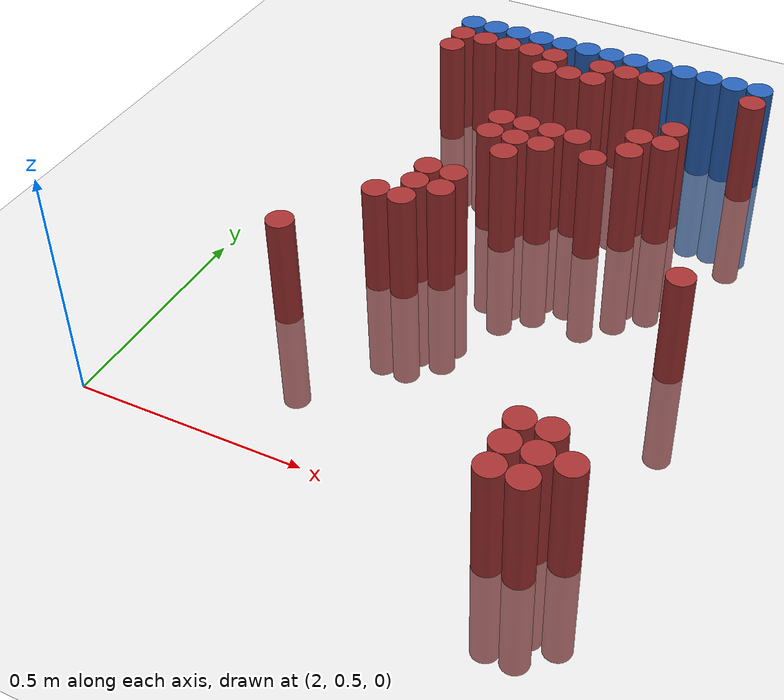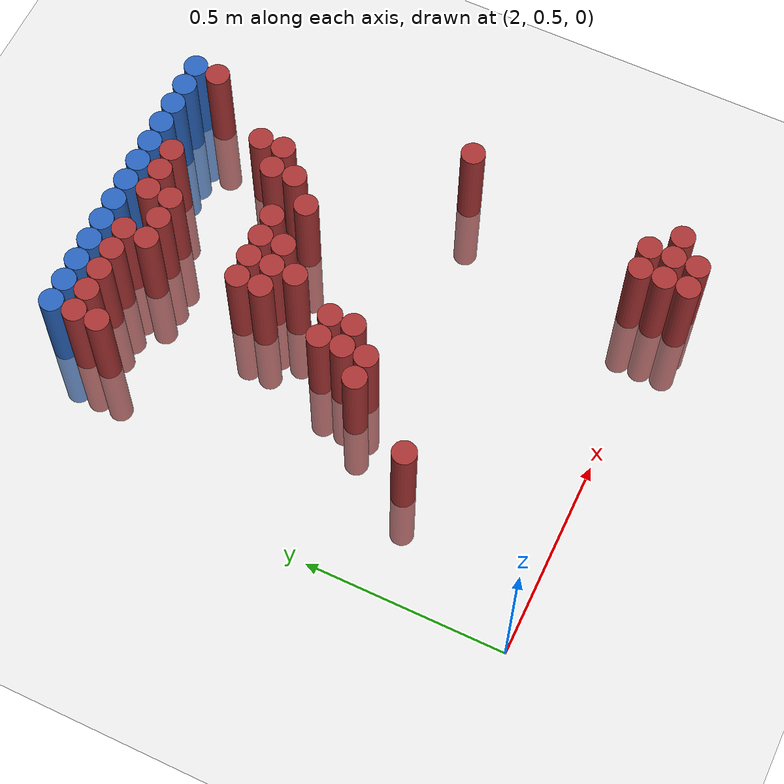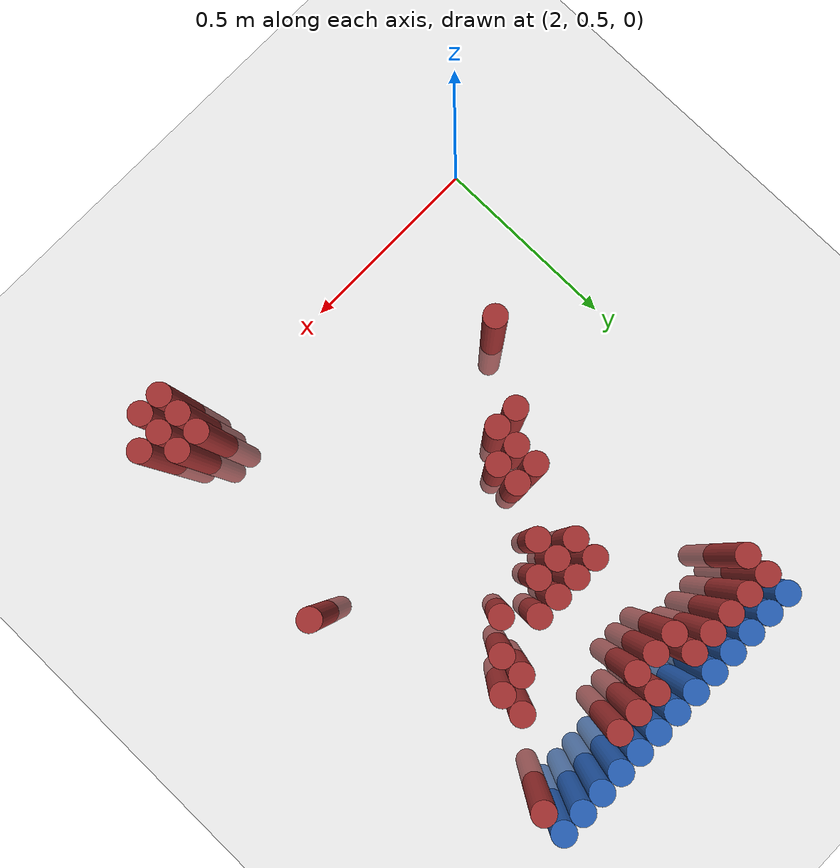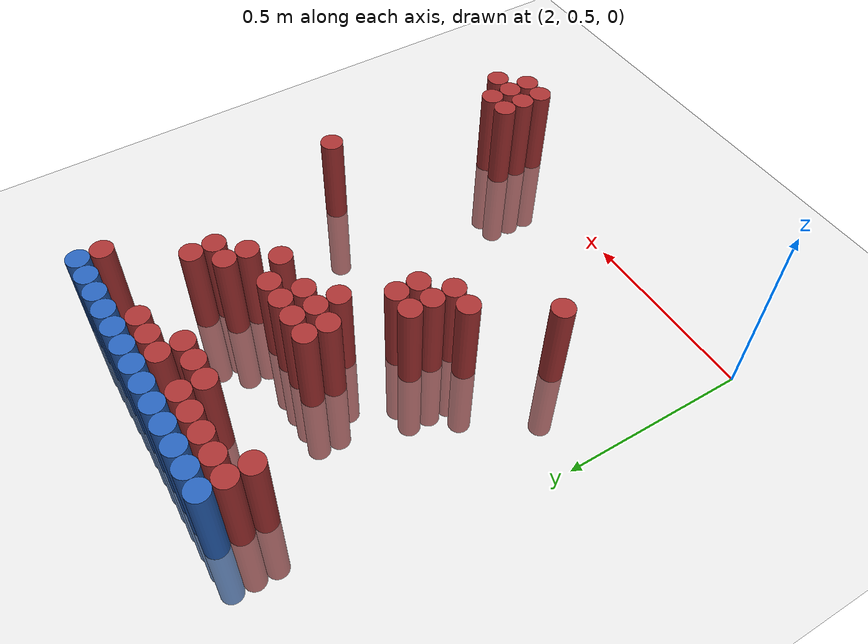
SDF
<sdf version="1.6">
 <world name="default">
  <model name="ground_plane">
   <static>1</static>
   <link name="link">
    <collision name="collision">
     <geometry><plane><normal>0 0 1</normal><size>100 100</size></plane></geometry>
     <surface><friction><ode><mu>100</mu><mu2>50</mu2></ode></friction></surface>
    </collision>
    <visual name="visual">
     <cast_shadows>0</cast_shadows>
     <geometry><plane><normal>0 0 1</normal><size>100 100</size></plane></geometry>
     <material>
      <script><uri>file://media/materials/scripts/gazebo.material</uri><name>Gazebo/Grey</name></script>
     </material>
    </visual>
   </link>
  </model>
  <model name="unit_cylinder_98">
   <static>1</static>
   <pose>2.250000 1.770000 0.000000 0.000000 0.000000 0.000000</pose>
   <link name="link">
    <inertial>
     <mass>1</mass>
     <inertia><ixx>0.145833</ixx><ixy>0</ixy><ixz>0</ixz><iyy>0.145833</iyy><iyz>0</iyz><izz>0.125</izz></inertia>
    </inertial>
    <collision name="collision">
     <geometry><cylinder><radius>0.030000</radius><length>0.5</length></cylinder></geometry>
    </collision>
    <visual name="visual">
     <geometry><cylinder><radius>0.030000</radius><length>0.5</length></cylinder></geometry>
     <material>
      <ambient>0.152000 0.379000 0.720000 1</ambient>
      <diffuse>0.152000 0.379000 0.720000 1</diffuse>
     </material>
     <material>
      <script><name>Gazebo/Grey</name><uri>file://media/materials/scripts/gazebo.material</uri></script>
     </material>
    </visual>
   </link>
  </model>
  <model name="unit_cylinder_99">
   <static>1</static>
   <pose>2.310000 1.770000 0.000000 0.000000 0.000000 0.000000</pose>
   <link name="link">
    <inertial>
     <mass>1</mass>
     <inertia><ixx>0.145833</ixx><ixy>0</ixy><ixz>0</ixz><iyy>0.145833</iyy><iyz>0</iyz><izz>0.125</izz></inertia>
    </inertial>
    <collision name="collision">
     <geometry><cylinder><radius>0.030000</radius><length>0.5</length></cylinder></geometry>
    </collision>
    <visual name="visual">
     <geometry><cylinder><radius>0.030000</radius><length>0.5</length></cylinder></geometry>
     <material>
      <ambient>0.152000 0.379000 0.720000 1</ambient>
      <diffuse>0.152000 0.379000 0.720000 1</diffuse>
     </material>
     <material>
      <script><name>Gazebo/Grey</name><uri>file://media/materials/scripts/gazebo.material</uri></script>
     </material>
    </visual>
   </link>
  </model>
  <model name="unit_cylinder_100">
   <static>1</static>
   <pose>2.370000 1.770000 0.000000 0.000000 0.000000 0.000000</pose>
   <link name="link">
    <inertial>
     <mass>1</mass>
     <inertia><ixx>0.145833</ixx><ixy>0</ixy><ixz>0</ixz><iyy>0.145833</iyy><iyz>0</iyz><izz>0.125</izz></inertia>
    </inertial>
    <collision name="collision">
     <geometry><cylinder><radius>0.030000</radius><length>0.5</length></cylinder></geometry>
    </collision>
    <visual name="visual">
     <geometry><cylinder><radius>0.030000</radius><length>0.5</length></cylinder></geometry>
     <material>
      <ambient>0.152000 0.379000 0.720000 1</ambient>
      <diffuse>0.152000 0.379000 0.720000 1</diffuse>
     </material>
     <material>
      <script><name>Gazebo/Grey</name><uri>file://media/materials/scripts/gazebo.material</uri></script>
     </material>
    </visual>
   </link>
  </model>
  <model name="unit_cylinder_101">
   <static>1</static>
   <pose>2.430000 1.770000 0.000000 0.000000 0.000000 0.000000</pose>
   <link name="link">
    <inertial>
     <mass>1</mass>
     <inertia><ixx>0.145833</ixx><ixy>0</ixy><ixz>0</ixz><iyy>0.145833</iyy><iyz>0</iyz><izz>0.125</izz></inertia>
    </inertial>
    <collision name="collision">
     <geometry><cylinder><radius>0.030000</radius><length>0.5</length></cylinder></geometry>
    </collision>
    <visual name="visual">
     <geometry><cylinder><radius>0.030000</radius><length>0.5</length></cylinder></geometry>
     <material>
      <ambient>0.152000 0.379000 0.720000 1</ambient>
      <diffuse>0.152000 0.379000 0.720000 1</diffuse>
     </material>
     <material>
      <script><name>Gazebo/Grey</name><uri>file://media/materials/scripts/gazebo.material</uri></script>
     </material>
    </visual>
   </link>
  </model>
  <model name="unit_cylinder_102">
   <static>1</static>
   <pose>2.490000 1.770000 0.000000 0.000000 0.000000 0.000000</pose>
   <link name="link">
    <inertial>
     <mass>1</mass>
     <inertia><ixx>0.145833</ixx><ixy>0</ixy><ixz>0</ixz><iyy>0.145833</iyy><iyz>0</iyz><izz>0.125</izz></inertia>
    </inertial>
    <collision name="collision">
     <geometry><cylinder><radius>0.030000</radius><length>0.5</length></cylinder></geometry>
    </collision>
    <visual name="visual">
     <geometry><cylinder><radius>0.030000</radius><length>0.5</length></cylinder></geometry>
     <material>
      <ambient>0.152000 0.379000 0.720000 1</ambient>
      <diffuse>0.152000 0.379000 0.720000 1</diffuse>
     </material>
     <material>
      <script><name>Gazebo/Grey</name><uri>file://media/materials/scripts/gazebo.material</uri></script>
     </material>
    </visual>
   </link>
  </model>
  <model name="unit_cylinder_103">
   <static>1</static>
   <pose>2.550000 1.770000 0.000000 0.000000 0.000000 0.000000</pose>
   <link name="link">
    <inertial>
     <mass>1</mass>
     <inertia><ixx>0.145833</ixx><ixy>0</ixy><ixz>0</ixz><iyy>0.145833</iyy><iyz>0</iyz><izz>0.125</izz></inertia>
    </inertial>
    <collision name="collision">
     <geometry><cylinder><radius>0.030000</radius><length>0.5</length></cylinder></geometry>
    </collision>
    <visual name="visual">
     <geometry><cylinder><radius>0.030000</radius><length>0.5</length></cylinder></geometry>
     <material>
      <ambient>0.152000 0.379000 0.720000 1</ambient>
      <diffuse>0.152000 0.379000 0.720000 1</diffuse>
     </material>
     <material>
      <script><name>Gazebo/Grey</name><uri>file://media/materials/scripts/gazebo.material</uri></script>
     </material>
    </visual>
   </link>
  </model>
  <model name="unit_cylinder_104">
   <static>1</static>
   <pose>2.610000 1.770000 0.000000 0.000000 0.000000 0.000000</pose>
   <link name="link">
    <inertial>
     <mass>1</mass>
     <inertia><ixx>0.145833</ixx><ixy>0</ixy><ixz>0</ixz><iyy>0.145833</iyy><iyz>0</iyz><izz>0.125</izz></inertia>
    </inertial>
    <collision name="collision">
     <geometry><cylinder><radius>0.030000</radius><length>0.5</length></cylinder></geometry>
    </collision>
    <visual name="visual">
     <geometry><cylinder><radius>0.030000</radius><length>0.5</length></cylinder></geometry>
     <material>
      <ambient>0.152000 0.379000 0.720000 1</ambient>
      <diffuse>0.152000 0.379000 0.720000 1</diffuse>
     </material>
     <material>
      <script><name>Gazebo/Grey</name><uri>file://media/materials/scripts/gazebo.material</uri></script>
     </material>
    </visual>
   </link>
  </model>
  <model name="unit_cylinder_105">
   <static>1</static>
   <pose>2.670000 1.770000 0.000000 0.000000 0.000000 0.000000</pose>
   <link name="link">
    <inertial>
     <mass>1</mass>
     <inertia><ixx>0.145833</ixx><ixy>0</ixy><ixz>0</ixz><iyy>0.145833</iyy><iyz>0</iyz><izz>0.125</izz></inertia>
    </inertial>
    <collision name="collision">
     <geometry><cylinder><radius>0.030000</radius><length>0.5</length></cylinder></geometry>
    </collision>
    <visual name="visual">
     <geometry><cylinder><radius>0.030000</radius><length>0.5</length></cylinder></geometry>
     <material>
      <ambient>0.152000 0.379000 0.720000 1</ambient>
      <diffuse>0.152000 0.379000 0.720000 1</diffuse>
     </material>
     <material>
      <script><name>Gazebo/Grey</name><uri>file://media/materials/scripts/gazebo.material</uri></script>
     </material>
    </visual>
   </link>
  </model>
  <model name="unit_cylinder_106">
   <static>1</static>
   <pose>2.730000 1.770000 0.000000 0.000000 0.000000 0.000000</pose>
   <link name="link">
    <inertial>
     <mass>1</mass>
     <inertia><ixx>0.145833</ixx><ixy>0</ixy><ixz>0</ixz><iyy>0.145833</iyy><iyz>0</iyz><izz>0.125</izz></inertia>
    </inertial>
    <collision name="collision">
     <geometry><cylinder><radius>0.030000</radius><length>0.5</length></cylinder></geometry>
    </collision>
    <visual name="visual">
     <geometry><cylinder><radius>0.030000</radius><length>0.5</length></cylinder></geometry>
     <material>
      <ambient>0.152000 0.379000 0.720000 1</ambient>
      <diffuse>0.152000 0.379000 0.720000 1</diffuse>
     </material>
     <material>
      <script><name>Gazebo/Grey</name><uri>file://media/materials/scripts/gazebo.material</uri></script>
     </material>
    </visual>
   </link>
  </model>
  <model name="unit_cylinder_107">
   <static>1</static>
   <pose>2.790000 1.770000 0.000000 0.000000 0.000000 0.000000</pose>
   <link name="link">
    <inertial>
     <mass>1</mass>
     <inertia><ixx>0.145833</ixx><ixy>0</ixy><ixz>0</ixz><iyy>0.145833</iyy><iyz>0</iyz><izz>0.125</izz></inertia>
    </inertial>
    <collision name="collision">
     <geometry><cylinder><radius>0.030000</radius><length>0.5</length></cylinder></geometry>
    </collision>
    <visual name="visual">
     <geometry><cylinder><radius>0.030000</radius><length>0.5</length></cylinder></geometry>
     <material>
      <ambient>0.152000 0.379000 0.720000 1</ambient>
      <diffuse>0.152000 0.379000 0.720000 1</diffuse>
     </material>
     <material>
      <script><name>Gazebo/Grey</name><uri>file://media/materials/scripts/gazebo.material</uri></script>
     </material>
    </visual>
   </link>
  </model>
  <model name="unit_cylinder_108">
   <static>1</static>
   <pose>2.850000 1.770000 0.000000 0.000000 0.000000 0.000000</pose>
   <link name="link">
    <inertial>
     <mass>1</mass>
     <inertia><ixx>0.145833</ixx><ixy>0</ixy><ixz>0</ixz><iyy>0.145833</iyy><iyz>0</iyz><izz>0.125</izz></inertia>
    </inertial>
    <collision name="collision">
     <geometry><cylinder><radius>0.030000</radius><length>0.5</length></cylinder></geometry>
    </collision>
    <visual name="visual">
     <geometry><cylinder><radius>0.030000</radius><length>0.5</length></cylinder></geometry>
     <material>
      <ambient>0.152000 0.379000 0.720000 1</ambient>
      <diffuse>0.152000 0.379000 0.720000 1</diffuse>
     </material>
     <material>
      <script><name>Gazebo/Grey</name><uri>file://media/materials/scripts/gazebo.material</uri></script>
     </material>
    </visual>
   </link>
  </model>
  <model name="unit_cylinder_109">
   <static>1</static>
   <pose>2.910000 1.770000 0.000000 0.000000 0.000000 0.000000</pose>
   <link name="link">
    <inertial>
     <mass>1</mass>
     <inertia><ixx>0.145833</ixx><ixy>0</ixy><ixz>0</ixz><iyy>0.145833</iyy><iyz>0</iyz><izz>0.125</izz></inertia>
    </inertial>
    <collision name="collision">
     <geometry><cylinder><radius>0.030000</radius><length>0.5</length></cylinder></geometry>
    </collision>
    <visual name="visual">
     <geometry><cylinder><radius>0.030000</radius><length>0.5</length></cylinder></geometry>
     <material>
      <ambient>0.152000 0.379000 0.720000 1</ambient>
      <diffuse>0.152000 0.379000 0.720000 1</diffuse>
     </material>
     <material>
      <script><name>Gazebo/Grey</name><uri>file://media/materials/scripts/gazebo.material</uri></script>
     </material>
    </visual>
   </link>
  </model>
  <model name="unit_cylinder_110">
   <static>1</static>
   <pose>2.970000 1.770000 0.000000 0.000000 0.000000 0.000000</pose>
   <link name="link">
    <inertial>
     <mass>1</mass>
     <inertia><ixx>0.145833</ixx><ixy>0</ixy><ixz>0</ixz><iyy>0.145833</iyy><iyz>0</iyz><izz>0.125</izz></inertia>
    </inertial>
    <collision name="collision">
     <geometry><cylinder><radius>0.030000</radius><length>0.5</length></cylinder></geometry>
    </collision>
    <visual name="visual">
     <geometry><cylinder><radius>0.030000</radius><length>0.5</length></cylinder></geometry>
     <material>
      <ambient>0.152000 0.379000 0.720000 1</ambient>
      <diffuse>0.152000 0.379000 0.720000 1</diffuse>
     </material>
     <material>
      <script><name>Gazebo/Grey</name><uri>file://media/materials/scripts/gazebo.material</uri></script>
     </material>
    </visual>
   </link>
  </model>
  <model name="unit_cylinder_126">
   <static>1</static>
   <pose>2.250000 1.710000 0.000000 0.000000 0.000000 0.000000</pose>
   <link name="link">
    <inertial>
     <mass>1</mass>
     <inertia><ixx>0.145833</ixx><ixy>0</ixy><ixz>0</ixz><iyy>0.145833</iyy><iyz>0</iyz><izz>0.125</izz></inertia>
    </inertial>
    <collision name="collision">
     <geometry><cylinder><radius>0.030000</radius><length>0.5</length></cylinder></geometry>
    </collision>
    <visual name="visual">
     <geometry><cylinder><radius>0.030000</radius><length>0.5</length></cylinder></geometry>
     <material>
      <ambient>0.648000 0.192000 0.192000 1</ambient>
      <diffuse>0.648000 0.192000 0.192000 1</diffuse>
     </material>
     <material>
      <script><name>Gazebo/Grey</name><uri>file://media/materials/scripts/gazebo.material</uri></script>
     </material>
    </visual>
   </link>
  </model>
  <model name="unit_cylinder_127">
   <static>1</static>
   <pose>2.310000 1.710000 0.000000 0.000000 0.000000 0.000000</pose>
   <link name="link">
    <inertial>
     <mass>1</mass>
     <inertia><ixx>0.145833</ixx><ixy>0</ixy><ixz>0</ixz><iyy>0.145833</iyy><iyz>0</iyz><izz>0.125</izz></inertia>
    </inertial>
    <collision name="collision">
     <geometry><cylinder><radius>0.030000</radius><length>0.5</length></cylinder></geometry>
    </collision>
    <visual name="visual">
     <geometry><cylinder><radius>0.030000</radius><length>0.5</length></cylinder></geometry>
     <material>
      <ambient>0.648000 0.192000 0.192000 1</ambient>
      <diffuse>0.648000 0.192000 0.192000 1</diffuse>
     </material>
     <material>
      <script><name>Gazebo/Grey</name><uri>file://media/materials/scripts/gazebo.material</uri></script>
     </material>
    </visual>
   </link>
  </model>
  <model name="unit_cylinder_128">
   <static>1</static>
   <pose>2.370000 1.710000 0.000000 0.000000 0.000000 0.000000</pose>
   <link name="link">
    <inertial>
     <mass>1</mass>
     <inertia><ixx>0.145833</ixx><ixy>0</ixy><ixz>0</ixz><iyy>0.145833</iyy><iyz>0</iyz><izz>0.125</izz></inertia>
    </inertial>
    <collision name="collision">
     <geometry><cylinder><radius>0.030000</radius><length>0.5</length></cylinder></geometry>
    </collision>
    <visual name="visual">
     <geometry><cylinder><radius>0.030000</radius><length>0.5</length></cylinder></geometry>
     <material>
      <ambient>0.648000 0.192000 0.192000 1</ambient>
      <diffuse>0.648000 0.192000 0.192000 1</diffuse>
     </material>
     <material>
      <script><name>Gazebo/Grey</name><uri>file://media/materials/scripts/gazebo.material</uri></script>
     </material>
    </visual>
   </link>
  </model>
  <model name="unit_cylinder_129">
   <static>1</static>
   <pose>2.430000 1.710000 0.000000 0.000000 0.000000 0.000000</pose>
   <link name="link">
    <inertial>
     <mass>1</mass>
     <inertia><ixx>0.145833</ixx><ixy>0</ixy><ixz>0</ixz><iyy>0.145833</iyy><iyz>0</iyz><izz>0.125</izz></inertia>
    </inertial>
    <collision name="collision">
     <geometry><cylinder><radius>0.030000</radius><length>0.5</length></cylinder></geometry>
    </collision>
    <visual name="visual">
     <geometry><cylinder><radius>0.030000</radius><length>0.5</length></cylinder></geometry>
     <material>
      <ambient>0.648000 0.192000 0.192000 1</ambient>
      <diffuse>0.648000 0.192000 0.192000 1</diffuse>
     </material>
     <material>
      <script><name>Gazebo/Grey</name><uri>file://media/materials/scripts/gazebo.material</uri></script>
     </material>
    </visual>
   </link>
  </model>
  <model name="unit_cylinder_130">
   <static>1</static>
   <pose>2.490000 1.710000 0.000000 0.000000 0.000000 0.000000</pose>
   <link name="link">
    <inertial>
     <mass>1</mass>
     <inertia><ixx>0.145833</ixx><ixy>0</ixy><ixz>0</ixz><iyy>0.145833</iyy><iyz>0</iyz><izz>0.125</izz></inertia>
    </inertial>
    <collision name="collision">
     <geometry><cylinder><radius>0.030000</radius><length>0.5</length></cylinder></geometry>
    </collision>
    <visual name="visual">
     <geometry><cylinder><radius>0.030000</radius><length>0.5</length></cylinder></geometry>
     <material>
      <ambient>0.648000 0.192000 0.192000 1</ambient>
      <diffuse>0.648000 0.192000 0.192000 1</diffuse>
     </material>
     <material>
      <script><name>Gazebo/Grey</name><uri>file://media/materials/scripts/gazebo.material</uri></script>
     </material>
    </visual>
   </link>
  </model>
  <model name="unit_cylinder_131">
   <static>1</static>
   <pose>2.610000 1.710000 0.000000 0.000000 0.000000 0.000000</pose>
   <link name="link">
    <inertial>
     <mass>1</mass>
     <inertia><ixx>0.145833</ixx><ixy>0</ixy><ixz>0</ixz><iyy>0.145833</iyy><iyz>0</iyz><izz>0.125</izz></inertia>
    </inertial>
    <collision name="collision">
     <geometry><cylinder><radius>0.030000</radius><length>0.5</length></cylinder></geometry>
    </collision>
    <visual name="visual">
     <geometry><cylinder><radius>0.030000</radius><length>0.5</length></cylinder></geometry>
     <material>
      <ambient>0.648000 0.192000 0.192000 1</ambient>
      <diffuse>0.648000 0.192000 0.192000 1</diffuse>
     </material>
     <material>
      <script><name>Gazebo/Grey</name><uri>file://media/materials/scripts/gazebo.material</uri></script>
     </material>
    </visual>
   </link>
  </model>
  <model name="unit_cylinder_132">
   <static>1</static>
   <pose>2.670000 1.710000 0.000000 0.000000 0.000000 0.000000</pose>
   <link name="link">
    <inertial>
     <mass>1</mass>
     <inertia><ixx>0.145833</ixx><ixy>0</ixy><ixz>0</ixz><iyy>0.145833</iyy><iyz>0</iyz><izz>0.125</izz></inertia>
    </inertial>
    <collision name="collision">
     <geometry><cylinder><radius>0.030000</radius><length>0.5</length></cylinder></geometry>
    </collision>
    <visual name="visual">
     <geometry><cylinder><radius>0.030000</radius><length>0.5</length></cylinder></geometry>
     <material>
      <ambient>0.648000 0.192000 0.192000 1</ambient>
      <diffuse>0.648000 0.192000 0.192000 1</diffuse>
     </material>
     <material>
      <script><name>Gazebo/Grey</name><uri>file://media/materials/scripts/gazebo.material</uri></script>
     </material>
    </visual>
   </link>
  </model>
  <model name="unit_cylinder_133">
   <static>1</static>
   <pose>2.730000 1.710000 0.000000 0.000000 0.000000 0.000000</pose>
   <link name="link">
    <inertial>
     <mass>1</mass>
     <inertia><ixx>0.145833</ixx><ixy>0</ixy><ixz>0</ixz><iyy>0.145833</iyy><iyz>0</iyz><izz>0.125</izz></inertia>
    </inertial>
    <collision name="collision">
     <geometry><cylinder><radius>0.030000</radius><length>0.5</length></cylinder></geometry>
    </collision>
    <visual name="visual">
     <geometry><cylinder><radius>0.030000</radius><length>0.5</length></cylinder></geometry>
     <material>
      <ambient>0.648000 0.192000 0.192000 1</ambient>
      <diffuse>0.648000 0.192000 0.192000 1</diffuse>
     </material>
     <material>
      <script><name>Gazebo/Grey</name><uri>file://media/materials/scripts/gazebo.material</uri></script>
     </material>
    </visual>
   </link>
  </model>
  <model name="unit_cylinder_134">
   <static>1</static>
   <pose>2.970000 1.710000 0.000000 0.000000 0.000000 0.000000</pose>
   <link name="link">
    <inertial>
     <mass>1</mass>
     <inertia><ixx>0.145833</ixx><ixy>0</ixy><ixz>0</ixz><iyy>0.145833</iyy><iyz>0</iyz><izz>0.125</izz></inertia>
    </inertial>
    <collision name="collision">
     <geometry><cylinder><radius>0.030000</radius><length>0.5</length></cylinder></geometry>
    </collision>
    <visual name="visual">
     <geometry><cylinder><radius>0.030000</radius><length>0.5</length></cylinder></geometry>
     <material>
      <ambient>0.648000 0.192000 0.192000 1</ambient>
      <diffuse>0.648000 0.192000 0.192000 1</diffuse>
     </material>
     <material>
      <script><name>Gazebo/Grey</name><uri>file://media/materials/scripts/gazebo.material</uri></script>
     </material>
    </visual>
   </link>
  </model>
  <model name="unit_cylinder_145">
   <static>1</static>
   <pose>2.250000 1.650000 0.000000 0.000000 0.000000 0.000000</pose>
   <link name="link">
    <inertial>
     <mass>1</mass>
     <inertia><ixx>0.145833</ixx><ixy>0</ixy><ixz>0</ixz><iyy>0.145833</iyy><iyz>0</iyz><izz>0.125</izz></inertia>
    </inertial>
    <collision name="collision">
     <geometry><cylinder><radius>0.030000</radius><length>0.5</length></cylinder></geometry>
    </collision>
    <visual name="visual">
     <geometry><cylinder><radius>0.030000</radius><length>0.5</length></cylinder></geometry>
     <material>
      <ambient>0.648000 0.192000 0.192000 1</ambient>
      <diffuse>0.648000 0.192000 0.192000 1</diffuse>
     </material>
     <material>
      <script><name>Gazebo/Grey</name><uri>file://media/materials/scripts/gazebo.material</uri></script>
     </material>
    </visual>
   </link>
  </model>
  <model name="unit_cylinder_146">
   <static>1</static>
   <pose>2.490000 1.650000 0.000000 0.000000 0.000000 0.000000</pose>
   <link name="link">
    <inertial>
     <mass>1</mass>
     <inertia><ixx>0.145833</ixx><ixy>0</ixy><ixz>0</ixz><iyy>0.145833</iyy><iyz>0</iyz><izz>0.125</izz></inertia>
    </inertial>
    <collision name="collision">
     <geometry><cylinder><radius>0.030000</radius><length>0.5</length></cylinder></geometry>
    </collision>
    <visual name="visual">
     <geometry><cylinder><radius>0.030000</radius><length>0.5</length></cylinder></geometry>
     <material>
      <ambient>0.648000 0.192000 0.192000 1</ambient>
      <diffuse>0.648000 0.192000 0.192000 1</diffuse>
     </material>
     <material>
      <script><name>Gazebo/Grey</name><uri>file://media/materials/scripts/gazebo.material</uri></script>
     </material>
    </visual>
   </link>
  </model>
  <model name="unit_cylinder_147">
   <static>1</static>
   <pose>2.550000 1.650000 0.000000 0.000000 0.000000 0.000000</pose>
   <link name="link">
    <inertial>
     <mass>1</mass>
     <inertia><ixx>0.145833</ixx><ixy>0</ixy><ixz>0</ixz><iyy>0.145833</iyy><iyz>0</iyz><izz>0.125</izz></inertia>
    </inertial>
    <collision name="collision">
     <geometry><cylinder><radius>0.030000</radius><length>0.5</length></cylinder></geometry>
    </collision>
    <visual name="visual">
     <geometry><cylinder><radius>0.030000</radius><length>0.5</length></cylinder></geometry>
     <material>
      <ambient>0.648000 0.192000 0.192000 1</ambient>
      <diffuse>0.648000 0.192000 0.192000 1</diffuse>
     </material>
     <material>
      <script><name>Gazebo/Grey</name><uri>file://media/materials/scripts/gazebo.material</uri></script>
     </material>
    </visual>
   </link>
  </model>
  <model name="unit_cylinder_148">
   <static>1</static>
   <pose>2.610000 1.650000 0.000000 0.000000 0.000000 0.000000</pose>
   <link name="link">
    <inertial>
     <mass>1</mass>
     <inertia><ixx>0.145833</ixx><ixy>0</ixy><ixz>0</ixz><iyy>0.145833</iyy><iyz>0</iyz><izz>0.125</izz></inertia>
    </inertial>
    <collision name="collision">
     <geometry><cylinder><radius>0.030000</radius><length>0.5</length></cylinder></geometry>
    </collision>
    <visual name="visual">
     <geometry><cylinder><radius>0.030000</radius><length>0.5</length></cylinder></geometry>
     <material>
      <ambient>0.648000 0.192000 0.192000 1</ambient>
      <diffuse>0.648000 0.192000 0.192000 1</diffuse>
     </material>
     <material>
      <script><name>Gazebo/Grey</name><uri>file://media/materials/scripts/gazebo.material</uri></script>
     </material>
    </visual>
   </link>
  </model>
  <model name="unit_cylinder_152">
   <static>1</static>
   <pose>2.850000 1.530000 0.000000 0.000000 0.000000 0.000000</pose>
   <link name="link">
    <inertial>
     <mass>1</mass>
     <inertia><ixx>0.145833</ixx><ixy>0</ixy><ixz>0</ixz><iyy>0.145833</iyy><iyz>0</iyz><izz>0.125</izz></inertia>
    </inertial>
    <collision name="collision">
     <geometry><cylinder><radius>0.030000</radius><length>0.5</length></cylinder></geometry>
    </collision>
    <visual name="visual">
     <geometry><cylinder><radius>0.030000</radius><length>0.5</length></cylinder></geometry>
     <material>
      <ambient>0.648000 0.192000 0.192000 1</ambient>
      <diffuse>0.648000 0.192000 0.192000 1</diffuse>
     </material>
     <material>
      <script><name>Gazebo/Grey</name><uri>file://media/materials/scripts/gazebo.material</uri></script>
     </material>
    </visual>
   </link>
  </model>
  <model name="unit_cylinder_155">
   <static>1</static>
   <pose>2.790000 1.470000 0.000000 0.000000 0.000000 0.000000</pose>
   <link name="link">
    <inertial>
     <mass>1</mass>
     <inertia><ixx>0.145833</ixx><ixy>0</ixy><ixz>0</ixz><iyy>0.145833</iyy><iyz>0</iyz><izz>0.125</izz></inertia>
    </inertial>
    <collision name="collision">
     <geometry><cylinder><radius>0.030000</radius><length>0.5</length></cylinder></geometry>
    </collision>
    <visual name="visual">
     <geometry><cylinder><radius>0.030000</radius><length>0.5</length></cylinder></geometry>
     <material>
      <ambient>0.648000 0.192000 0.192000 1</ambient>
      <diffuse>0.648000 0.192000 0.192000 1</diffuse>
     </material>
     <material>
      <script><name>Gazebo/Grey</name><uri>file://media/materials/scripts/gazebo.material</uri></script>
     </material>
    </visual>
   </link>
  </model>
  <model name="unit_cylinder_156">
   <static>1</static>
   <pose>2.850000 1.470000 0.000000 0.000000 0.000000 0.000000</pose>
   <link name="link">
    <inertial>
     <mass>1</mass>
     <inertia><ixx>0.145833</ixx><ixy>0</ixy><ixz>0</ixz><iyy>0.145833</iyy><iyz>0</iyz><izz>0.125</izz></inertia>
    </inertial>
    <collision name="collision">
     <geometry><cylinder><radius>0.030000</radius><length>0.5</length></cylinder></geometry>
    </collision>
    <visual name="visual">
     <geometry><cylinder><radius>0.030000</radius><length>0.5</length></cylinder></geometry>
     <material>
      <ambient>0.648000 0.192000 0.192000 1</ambient>
      <diffuse>0.648000 0.192000 0.192000 1</diffuse>
     </material>
     <material>
      <script><name>Gazebo/Grey</name><uri>file://media/materials/scripts/gazebo.material</uri></script>
     </material>
    </visual>
   </link>
  </model>
  <model name="unit_cylinder_157">
   <static>1</static>
   <pose>2.490000 1.410000 0.000000 0.000000 0.000000 0.000000</pose>
   <link name="link">
    <inertial>
     <mass>1</mass>
     <inertia><ixx>0.145833</ixx><ixy>0</ixy><ixz>0</ixz><iyy>0.145833</iyy><iyz>0</iyz><izz>0.125</izz></inertia>
    </inertial>
    <collision name="collision">
     <geometry><cylinder><radius>0.030000</radius><length>0.5</length></cylinder></geometry>
    </collision>
    <visual name="visual">
     <geometry><cylinder><radius>0.030000</radius><length>0.5</length></cylinder></geometry>
     <material>
      <ambient>0.648000 0.192000 0.192000 1</ambient>
      <diffuse>0.648000 0.192000 0.192000 1</diffuse>
     </material>
     <material>
      <script><name>Gazebo/Grey</name><uri>file://media/materials/scripts/gazebo.material</uri></script>
     </material>
    </visual>
   </link>
  </model>
  <model name="unit_cylinder_158">
   <static>1</static>
   <pose>2.550000 1.410000 0.000000 0.000000 0.000000 0.000000</pose>
   <link name="link">
    <inertial>
     <mass>1</mass>
     <inertia><ixx>0.145833</ixx><ixy>0</ixy><ixz>0</ixz><iyy>0.145833</iyy><iyz>0</iyz><izz>0.125</izz></inertia>
    </inertial>
    <collision name="collision">
     <geometry><cylinder><radius>0.030000</radius><length>0.5</length></cylinder></geometry>
    </collision>
    <visual name="visual">
     <geometry><cylinder><radius>0.030000</radius><length>0.5</length></cylinder></geometry>
     <material>
      <ambient>0.648000 0.192000 0.192000 1</ambient>
      <diffuse>0.648000 0.192000 0.192000 1</diffuse>
     </material>
     <material>
      <script><name>Gazebo/Grey</name><uri>file://media/materials/scripts/gazebo.material</uri></script>
     </material>
    </visual>
   </link>
  </model>
  <model name="unit_cylinder_159">
   <static>1</static>
   <pose>2.610000 1.410000 0.000000 0.000000 0.000000 0.000000</pose>
   <link name="link">
    <inertial>
     <mass>1</mass>
     <inertia><ixx>0.145833</ixx><ixy>0</ixy><ixz>0</ixz><iyy>0.145833</iyy><iyz>0</iyz><izz>0.125</izz></inertia>
    </inertial>
    <collision name="collision">
     <geometry><cylinder><radius>0.030000</radius><length>0.5</length></cylinder></geometry>
    </collision>
    <visual name="visual">
     <geometry><cylinder><radius>0.030000</radius><length>0.5</length></cylinder></geometry>
     <material>
      <ambient>0.648000 0.192000 0.192000 1</ambient>
      <diffuse>0.648000 0.192000 0.192000 1</diffuse>
     </material>
     <material>
      <script><name>Gazebo/Grey</name><uri>file://media/materials/scripts/gazebo.material</uri></script>
     </material>
    </visual>
   </link>
  </model>
  <model name="unit_cylinder_160">
   <static>1</static>
   <pose>2.670000 1.410000 0.000000 0.000000 0.000000 0.000000</pose>
   <link name="link">
    <inertial>
     <mass>1</mass>
     <inertia><ixx>0.145833</ixx><ixy>0</ixy><ixz>0</ixz><iyy>0.145833</iyy><iyz>0</iyz><izz>0.125</izz></inertia>
    </inertial>
    <collision name="collision">
     <geometry><cylinder><radius>0.030000</radius><length>0.5</length></cylinder></geometry>
    </collision>
    <visual name="visual">
     <geometry><cylinder><radius>0.030000</radius><length>0.5</length></cylinder></geometry>
     <material>
      <ambient>0.648000 0.192000 0.192000 1</ambient>
      <diffuse>0.648000 0.192000 0.192000 1</diffuse>
     </material>
     <material>
      <script><name>Gazebo/Grey</name><uri>file://media/materials/scripts/gazebo.material</uri></script>
     </material>
    </visual>
   </link>
  </model>
  <model name="unit_cylinder_161">
   <static>1</static>
   <pose>2.790000 1.410000 0.000000 0.000000 0.000000 0.000000</pose>
   <link name="link">
    <inertial>
     <mass>1</mass>
     <inertia><ixx>0.145833</ixx><ixy>0</ixy><ixz>0</ixz><iyy>0.145833</iyy><iyz>0</iyz><izz>0.125</izz></inertia>
    </inertial>
    <collision name="collision">
     <geometry><cylinder><radius>0.030000</radius><length>0.5</length></cylinder></geometry>
    </collision>
    <visual name="visual">
     <geometry><cylinder><radius>0.030000</radius><length>0.5</length></cylinder></geometry>
     <material>
      <ambient>0.648000 0.192000 0.192000 1</ambient>
      <diffuse>0.648000 0.192000 0.192000 1</diffuse>
     </material>
     <material>
      <script><name>Gazebo/Grey</name><uri>file://media/materials/scripts/gazebo.material</uri></script>
     </material>
    </visual>
   </link>
  </model>
  <model name="unit_cylinder_162">
   <static>1</static>
   <pose>2.490000 1.350000 0.000000 0.000000 0.000000 0.000000</pose>
   <link name="link">
    <inertial>
     <mass>1</mass>
     <inertia><ixx>0.145833</ixx><ixy>0</ixy><ixz>0</ixz><iyy>0.145833</iyy><iyz>0</iyz><izz>0.125</izz></inertia>
    </inertial>
    <collision name="collision">
     <geometry><cylinder><radius>0.030000</radius><length>0.5</length></cylinder></geometry>
    </collision>
    <visual name="visual">
     <geometry><cylinder><radius>0.030000</radius><length>0.5</length></cylinder></geometry>
     <material>
      <ambient>0.648000 0.192000 0.192000 1</ambient>
      <diffuse>0.648000 0.192000 0.192000 1</diffuse>
     </material>
     <material>
      <script><name>Gazebo/Grey</name><uri>file://media/materials/scripts/gazebo.material</uri></script>
     </material>
    </visual>
   </link>
  </model>
  <model name="unit_cylinder_163">
   <static>1</static>
   <pose>2.550000 1.350000 0.000000 0.000000 0.000000 0.000000</pose>
   <link name="link">
    <inertial>
     <mass>1</mass>
     <inertia><ixx>0.145833</ixx><ixy>0</ixy><ixz>0</ixz><iyy>0.145833</iyy><iyz>0</iyz><izz>0.125</izz></inertia>
    </inertial>
    <collision name="collision">
     <geometry><cylinder><radius>0.030000</radius><length>0.5</length></cylinder></geometry>
    </collision>
    <visual name="visual">
     <geometry><cylinder><radius>0.030000</radius><length>0.5</length></cylinder></geometry>
     <material>
      <ambient>0.648000 0.192000 0.192000 1</ambient>
      <diffuse>0.648000 0.192000 0.192000 1</diffuse>
     </material>
     <material>
      <script><name>Gazebo/Grey</name><uri>file://media/materials/scripts/gazebo.material</uri></script>
     </material>
    </visual>
   </link>
  </model>
  <model name="unit_cylinder_164">
   <static>1</static>
   <pose>2.610000 1.350000 0.000000 0.000000 0.000000 0.000000</pose>
   <link name="link">
    <inertial>
     <mass>1</mass>
     <inertia><ixx>0.145833</ixx><ixy>0</ixy><ixz>0</ixz><iyy>0.145833</iyy><iyz>0</iyz><izz>0.125</izz></inertia>
    </inertial>
    <collision name="collision">
     <geometry><cylinder><radius>0.030000</radius><length>0.5</length></cylinder></geometry>
    </collision>
    <visual name="visual">
     <geometry><cylinder><radius>0.030000</radius><length>0.5</length></cylinder></geometry>
     <material>
      <ambient>0.648000 0.192000 0.192000 1</ambient>
      <diffuse>0.648000 0.192000 0.192000 1</diffuse>
     </material>
     <material>
      <script><name>Gazebo/Grey</name><uri>file://media/materials/scripts/gazebo.material</uri></script>
     </material>
    </visual>
   </link>
  </model>
  <model name="unit_cylinder_165">
   <static>1</static>
   <pose>2.730000 1.350000 0.000000 0.000000 0.000000 0.000000</pose>
   <link name="link">
    <inertial>
     <mass>1</mass>
     <inertia><ixx>0.145833</ixx><ixy>0</ixy><ixz>0</ixz><iyy>0.145833</iyy><iyz>0</iyz><izz>0.125</izz></inertia>
    </inertial>
    <collision name="collision">
     <geometry><cylinder><radius>0.030000</radius><length>0.5</length></cylinder></geometry>
    </collision>
    <visual name="visual">
     <geometry><cylinder><radius>0.030000</radius><length>0.5</length></cylinder></geometry>
     <material>
      <ambient>0.648000 0.192000 0.192000 1</ambient>
      <diffuse>0.648000 0.192000 0.192000 1</diffuse>
     </material>
     <material>
      <script><name>Gazebo/Grey</name><uri>file://media/materials/scripts/gazebo.material</uri></script>
     </material>
    </visual>
   </link>
  </model>
  <model name="unit_cylinder_168">
   <static>1</static>
   <pose>2.550000 1.290000 0.000000 0.000000 0.000000 0.000000</pose>
   <link name="link">
    <inertial>
     <mass>1</mass>
     <inertia><ixx>0.145833</ixx><ixy>0</ixy><ixz>0</ixz><iyy>0.145833</iyy><iyz>0</iyz><izz>0.125</izz></inertia>
    </inertial>
    <collision name="collision">
     <geometry><cylinder><radius>0.030000</radius><length>0.5</length></cylinder></geometry>
    </collision>
    <visual name="visual">
     <geometry><cylinder><radius>0.030000</radius><length>0.5</length></cylinder></geometry>
     <material>
      <ambient>0.648000 0.192000 0.192000 1</ambient>
      <diffuse>0.648000 0.192000 0.192000 1</diffuse>
     </material>
     <material>
      <script><name>Gazebo/Grey</name><uri>file://media/materials/scripts/gazebo.material</uri></script>
     </material>
    </visual>
   </link>
  </model>
  <model name="unit_cylinder_177">
   <static>1</static>
   <pose>2.430000 1.170000 0.000000 0.000000 0.000000 0.000000</pose>
   <link name="link">
    <inertial>
     <mass>1</mass>
     <inertia><ixx>0.145833</ixx><ixy>0</ixy><ixz>0</ixz><iyy>0.145833</iyy><iyz>0</iyz><izz>0.125</izz></inertia>
    </inertial>
    <collision name="collision">
     <geometry><cylinder><radius>0.030000</radius><length>0.5</length></cylinder></geometry>
    </collision>
    <visual name="visual">
     <geometry><cylinder><radius>0.030000</radius><length>0.5</length></cylinder></geometry>
     <material>
      <ambient>0.648000 0.192000 0.192000 1</ambient>
      <diffuse>0.648000 0.192000 0.192000 1</diffuse>
     </material>
     <material>
      <script><name>Gazebo/Grey</name><uri>file://media/materials/scripts/gazebo.material</uri></script>
     </material>
    </visual>
   </link>
  </model>
  <model name="unit_cylinder_178">
   <static>1</static>
   <pose>2.490000 1.170000 0.000000 0.000000 0.000000 0.000000</pose>
   <link name="link">
    <inertial>
     <mass>1</mass>
     <inertia><ixx>0.145833</ixx><ixy>0</ixy><ixz>0</ixz><iyy>0.145833</iyy><iyz>0</iyz><izz>0.125</izz></inertia>
    </inertial>
    <collision name="collision">
     <geometry><cylinder><radius>0.030000</radius><length>0.5</length></cylinder></geometry>
    </collision>
    <visual name="visual">
     <geometry><cylinder><radius>0.030000</radius><length>0.5</length></cylinder></geometry>
     <material>
      <ambient>0.648000 0.192000 0.192000 1</ambient>
      <diffuse>0.648000 0.192000 0.192000 1</diffuse>
     </material>
     <material>
      <script><name>Gazebo/Grey</name><uri>file://media/materials/scripts/gazebo.material</uri></script>
     </material>
    </visual>
   </link>
  </model>
  <model name="unit_cylinder_182">
   <static>1</static>
   <pose>2.430000 1.110000 0.000000 0.000000 0.000000 0.000000</pose>
   <link name="link">
    <inertial>
     <mass>1</mass>
     <inertia><ixx>0.145833</ixx><ixy>0</ixy><ixz>0</ixz><iyy>0.145833</iyy><iyz>0</iyz><izz>0.125</izz></inertia>
    </inertial>
    <collision name="collision">
     <geometry><cylinder><radius>0.030000</radius><length>0.5</length></cylinder></geometry>
    </collision>
    <visual name="visual">
     <geometry><cylinder><radius>0.030000</radius><length>0.5</length></cylinder></geometry>
     <material>
      <ambient>0.648000 0.192000 0.192000 1</ambient>
      <diffuse>0.648000 0.192000 0.192000 1</diffuse>
     </material>
     <material>
      <script><name>Gazebo/Grey</name><uri>file://media/materials/scripts/gazebo.material</uri></script>
     </material>
    </visual>
   </link>
  </model>
  <model name="unit_cylinder_183">
   <static>1</static>
   <pose>2.490000 1.110000 0.000000 0.000000 0.000000 0.000000</pose>
   <link name="link">
    <inertial>
     <mass>1</mass>
     <inertia><ixx>0.145833</ixx><ixy>0</ixy><ixz>0</ixz><iyy>0.145833</iyy><iyz>0</iyz><izz>0.125</izz></inertia>
    </inertial>
    <collision name="collision">
     <geometry><cylinder><radius>0.030000</radius><length>0.5</length></cylinder></geometry>
    </collision>
    <visual name="visual">
     <geometry><cylinder><radius>0.030000</radius><length>0.5</length></cylinder></geometry>
     <material>
      <ambient>0.648000 0.192000 0.192000 1</ambient>
      <diffuse>0.648000 0.192000 0.192000 1</diffuse>
     </material>
     <material>
      <script><name>Gazebo/Grey</name><uri>file://media/materials/scripts/gazebo.material</uri></script>
     </material>
    </visual>
   </link>
  </model>
  <model name="unit_cylinder_190">
   <static>1</static>
   <pose>2.370000 1.050000 0.000000 0.000000 0.000000 0.000000</pose>
   <link name="link">
    <inertial>
     <mass>1</mass>
     <inertia><ixx>0.145833</ixx><ixy>0</ixy><ixz>0</ixz><iyy>0.145833</iyy><iyz>0</iyz><izz>0.125</izz></inertia>
    </inertial>
    <collision name="collision">
     <geometry><cylinder><radius>0.030000</radius><length>0.5</length></cylinder></geometry>
    </collision>
    <visual name="visual">
     <geometry><cylinder><radius>0.030000</radius><length>0.5</length></cylinder></geometry>
     <material>
      <ambient>0.648000 0.192000 0.192000 1</ambient>
      <diffuse>0.648000 0.192000 0.192000 1</diffuse>
     </material>
     <material>
      <script><name>Gazebo/Grey</name><uri>file://media/materials/scripts/gazebo.material</uri></script>
     </material>
    </visual>
   </link>
  </model>
  <model name="unit_cylinder_191">
   <static>1</static>
   <pose>2.430000 1.050000 0.000000 0.000000 0.000000 0.000000</pose>
   <link name="link">
    <inertial>
     <mass>1</mass>
     <inertia><ixx>0.145833</ixx><ixy>0</ixy><ixz>0</ixz><iyy>0.145833</iyy><iyz>0</iyz><izz>0.125</izz></inertia>
    </inertial>
    <collision name="collision">
     <geometry><cylinder><radius>0.030000</radius><length>0.5</length></cylinder></geometry>
    </collision>
    <visual name="visual">
     <geometry><cylinder><radius>0.030000</radius><length>0.5</length></cylinder></geometry>
     <material>
      <ambient>0.648000 0.192000 0.192000 1</ambient>
      <diffuse>0.648000 0.192000 0.192000 1</diffuse>
     </material>
     <material>
      <script><name>Gazebo/Grey</name><uri>file://media/materials/scripts/gazebo.material</uri></script>
     </material>
    </visual>
   </link>
  </model>
  <model name="unit_cylinder_192">
   <static>1</static>
   <pose>3.030000 1.050000 0.000000 0.000000 0.000000 0.000000</pose>
   <link name="link">
    <inertial>
     <mass>1</mass>
     <inertia><ixx>0.145833</ixx><ixy>0</ixy><ixz>0</ixz><iyy>0.145833</iyy><iyz>0</iyz><izz>0.125</izz></inertia>
    </inertial>
    <collision name="collision">
     <geometry><cylinder><radius>0.030000</radius><length>0.5</length></cylinder></geometry>
    </collision>
    <visual name="visual">
     <geometry><cylinder><radius>0.030000</radius><length>0.5</length></cylinder></geometry>
     <material>
      <ambient>0.648000 0.192000 0.192000 1</ambient>
      <diffuse>0.648000 0.192000 0.192000 1</diffuse>
     </material>
     <material>
      <script><name>Gazebo/Grey</name><uri>file://media/materials/scripts/gazebo.material</uri></script>
     </material>
    </visual>
   </link>
  </model>
  <model name="unit_cylinder_203">
   <static>1</static>
   <pose>2.250000 0.870000 0.000000 0.000000 0.000000 0.000000</pose>
   <link name="link">
    <inertial>
     <mass>1</mass>
     <inertia><ixx>0.145833</ixx><ixy>0</ixy><ixz>0</ixz><iyy>0.145833</iyy><iyz>0</iyz><izz>0.125</izz></inertia>
    </inertial>
    <collision name="collision">
     <geometry><cylinder><radius>0.030000</radius><length>0.5</length></cylinder></geometry>
    </collision>
    <visual name="visual">
     <geometry><cylinder><radius>0.030000</radius><length>0.5</length></cylinder></geometry>
     <material>
      <ambient>0.648000 0.192000 0.192000 1</ambient>
      <diffuse>0.648000 0.192000 0.192000 1</diffuse>
     </material>
     <material>
      <script><name>Gazebo/Grey</name><uri>file://media/materials/scripts/gazebo.material</uri></script>
     </material>
    </visual>
   </link>
  </model>
  <model name="unit_cylinder_205">
   <static>1</static>
   <pose>2.910000 0.570000 0.000000 0.000000 0.000000 0.000000</pose>
   <link name="link">
    <inertial>
     <mass>1</mass>
     <inertia><ixx>0.145833</ixx><ixy>0</ixy><ixz>0</ixz><iyy>0.145833</iyy><iyz>0</iyz><izz>0.125</izz></inertia>
    </inertial>
    <collision name="collision">
     <geometry><cylinder><radius>0.030000</radius><length>0.5</length></cylinder></geometry>
    </collision>
    <visual name="visual">
     <geometry><cylinder><radius>0.030000</radius><length>0.5</length></cylinder></geometry>
     <material>
      <ambient>0.648000 0.192000 0.192000 1</ambient>
      <diffuse>0.648000 0.192000 0.192000 1</diffuse>
     </material>
     <material>
      <script><name>Gazebo/Grey</name><uri>file://media/materials/scripts/gazebo.material</uri></script>
     </material>
    </visual>
   </link>
  </model>
  <model name="unit_cylinder_206">
   <static>1</static>
   <pose>2.970000 0.570000 0.000000 0.000000 0.000000 0.000000</pose>
   <link name="link">
    <inertial>
     <mass>1</mass>
     <inertia><ixx>0.145833</ixx><ixy>0</ixy><ixz>0</ixz><iyy>0.145833</iyy><iyz>0</iyz><izz>0.125</izz></inertia>
    </inertial>
    <collision name="collision">
     <geometry><cylinder><radius>0.030000</radius><length>0.5</length></cylinder></geometry>
    </collision>
    <visual name="visual">
     <geometry><cylinder><radius>0.030000</radius><length>0.5</length></cylinder></geometry>
     <material>
      <ambient>0.648000 0.192000 0.192000 1</ambient>
      <diffuse>0.648000 0.192000 0.192000 1</diffuse>
     </material>
     <material>
      <script><name>Gazebo/Grey</name><uri>file://media/materials/scripts/gazebo.material</uri></script>
     </material>
    </visual>
   </link>
  </model>
  <model name="unit_cylinder_207">
   <static>1</static>
   <pose>2.910000 0.510000 0.000000 0.000000 0.000000 0.000000</pose>
   <link name="link">
    <inertial>
     <mass>1</mass>
     <inertia><ixx>0.145833</ixx><ixy>0</ixy><ixz>0</ixz><iyy>0.145833</iyy><iyz>0</iyz><izz>0.125</izz></inertia>
    </inertial>
    <collision name="collision">
     <geometry><cylinder><radius>0.030000</radius><length>0.5</length></cylinder></geometry>
    </collision>
    <visual name="visual">
     <geometry><cylinder><radius>0.030000</radius><length>0.5</length></cylinder></geometry>
     <material>
      <ambient>0.648000 0.192000 0.192000 1</ambient>
      <diffuse>0.648000 0.192000 0.192000 1</diffuse>
     </material>
     <material>
      <script><name>Gazebo/Grey</name><uri>file://media/materials/scripts/gazebo.material</uri></script>
     </material>
    </visual>
   </link>
  </model>
  <model name="unit_cylinder_208">
   <static>1</static>
   <pose>2.970000 0.510000 0.000000 0.000000 0.000000 0.000000</pose>
   <link name="link">
    <inertial>
     <mass>1</mass>
     <inertia><ixx>0.145833</ixx><ixy>0</ixy><ixz>0</ixz><iyy>0.145833</iyy><iyz>0</iyz><izz>0.125</izz></inertia>
    </inertial>
    <collision name="collision">
     <geometry><cylinder><radius>0.030000</radius><length>0.5</length></cylinder></geometry>
    </collision>
    <visual name="visual">
     <geometry><cylinder><radius>0.030000</radius><length>0.5</length></cylinder></geometry>
     <material>
      <ambient>0.648000 0.192000 0.192000 1</ambient>
      <diffuse>0.648000 0.192000 0.192000 1</diffuse>
     </material>
     <material>
      <script><name>Gazebo/Grey</name><uri>file://media/materials/scripts/gazebo.material</uri></script>
     </material>
    </visual>
   </link>
  </model>
  <model name="unit_cylinder_209">
   <static>1</static>
   <pose>3.030000 0.510000 0.000000 0.000000 0.000000 0.000000</pose>
   <link name="link">
    <inertial>
     <mass>1</mass>
     <inertia><ixx>0.145833</ixx><ixy>0</ixy><ixz>0</ixz><iyy>0.145833</iyy><iyz>0</iyz><izz>0.125</izz></inertia>
    </inertial>
    <collision name="collision">
     <geometry><cylinder><radius>0.030000</radius><length>0.5</length></cylinder></geometry>
    </collision>
    <visual name="visual">
     <geometry><cylinder><radius>0.030000</radius><length>0.5</length></cylinder></geometry>
     <material>
      <ambient>0.648000 0.192000 0.192000 1</ambient>
      <diffuse>0.648000 0.192000 0.192000 1</diffuse>
     </material>
     <material>
      <script><name>Gazebo/Grey</name><uri>file://media/materials/scripts/gazebo.material</uri></script>
     </material>
    </visual>
   </link>
  </model>
  <model name="unit_cylinder_210">
   <static>1</static>
   <pose>2.910000 0.450000 0.000000 0.000000 0.000000 0.000000</pose>
   <link name="link">
    <inertial>
     <mass>1</mass>
     <inertia><ixx>0.145833</ixx><ixy>0</ixy><ixz>0</ixz><iyy>0.145833</iyy><iyz>0</iyz><izz>0.125</izz></inertia>
    </inertial>
    <collision name="collision">
     <geometry><cylinder><radius>0.030000</radius><length>0.5</length></cylinder></geometry>
    </collision>
    <visual name="visual">
     <geometry><cylinder><radius>0.030000</radius><length>0.5</length></cylinder></geometry>
     <material>
      <ambient>0.648000 0.192000 0.192000 1</ambient>
      <diffuse>0.648000 0.192000 0.192000 1</diffuse>
     </material>
     <material>
      <script><name>Gazebo/Grey</name><uri>file://media/materials/scripts/gazebo.material</uri></script>
     </material>
    </visual>
   </link>
  </model>
  <model name="unit_cylinder_211">
   <static>1</static>
   <pose>2.970000 0.450000 0.000000 0.000000 0.000000 0.000000</pose>
   <link name="link">
    <inertial>
     <mass>1</mass>
     <inertia><ixx>0.145833</ixx><ixy>0</ixy><ixz>0</ixz><iyy>0.145833</iyy><iyz>0</iyz><izz>0.125</izz></inertia>
    </inertial>
    <collision name="collision">
     <geometry><cylinder><radius>0.030000</radius><length>0.5</length></cylinder></geometry>
    </collision>
    <visual name="visual">
     <geometry><cylinder><radius>0.030000</radius><length>0.5</length></cylinder></geometry>
     <material>
      <ambient>0.648000 0.192000 0.192000 1</ambient>
      <diffuse>0.648000 0.192000 0.192000 1</diffuse>
     </material>
     <material>
      <script><name>Gazebo/Grey</name><uri>file://media/materials/scripts/gazebo.material</uri></script>
     </material>
    </visual>
   </link>
  </model>
 </world>
</sdf>
